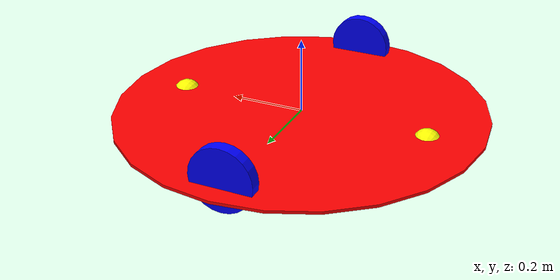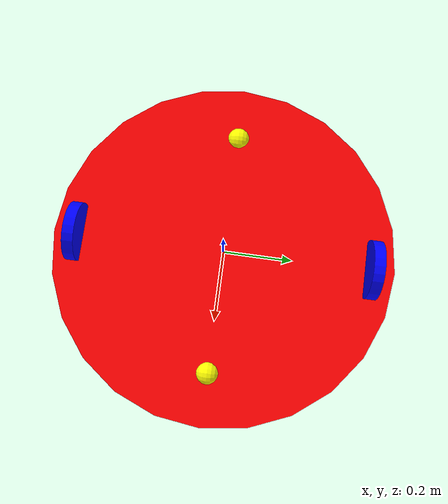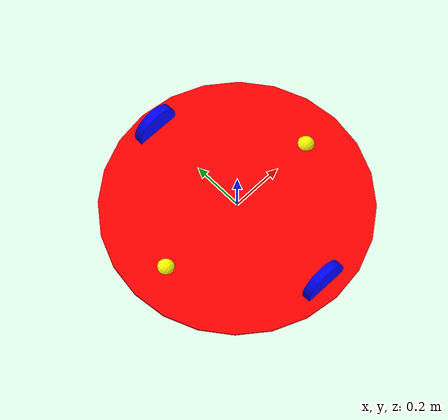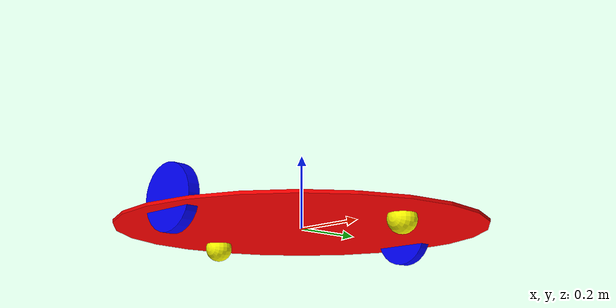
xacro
<?xml version="1.0" encoding="utf-8"?>

<robot name="myrobot" xmlns:xacro="http://www.ros.org/wiki/xacro">

<xacro:include filename="$(find myrobot)/urdf/diffrobot.gazebo"/>

<link name="base_footprint">
</link>

<joint name="base_footprint_joint" type="fixed">
      <origin
        xyz="0.0 0.0 0.0"
        rpy="0 0 0" />
    <parent link ="base_footprint"/>
    <child link ="base_link"/>
</joint>

<link name="base_link">
    <inertial>
        <origin xyz="0.0 0.0 0.0" rpy="0.0 0.0 0.0"/>
        <mass value="8.0"/>
        <inertia ixx="0.0" ixy="0.0" ixz="0.0" iyy="0.0" iyz="0.0" izz="0.0"/>
    </inertial>
    <visual name="base_link_visual">
        <geometry>
           <cylinder radius="0.5" length="0.008"/>
        </geometry>
        <material name="">
            <color rgba="1.0 0.0 0.0 1.0"/>
            <texture filename=""/>
        </material>
    </visual>
    <collision>
        <origin xyz="0.0 0.0 0.0" rpy="0.0 0.0 0.0"/>
        <geometry>
           <cylinder radius="0.5" length="0.008"/>
        </geometry>
    </collision>
</link>

<link name="left_wheel">
    <inertial>
        <origin xyz="0.0 0.0 0.0" rpy="0.0 0.0 0.0"/>
        <mass value="1.0"/>
        <inertia ixx="1.0" ixy="0.0" ixz="0.0" iyy="1.0" iyz="0.0" izz="1.0"/>
    </inertial>
    <visual name="left_wheel_visual">
        <origin xyz="0.0 0.0 0.0" rpy="0.0 0.0 0.0"/>
        <geometry>
            <cylinder radius="0.085" length="0.032"/>
        </geometry>
        <material name="">
            <color rgba="0.0 0.0 1.0 1.0"/>
            <texture filename=""/>
        </material>
    </visual>
    <collision>
        <origin xyz="0.0 0.0 0.0" rpy="0.0 0.0 0.0"/>
        <geometry>
            <cylinder radius="0.085" length="0.032"/>
        </geometry>
    </collision>
</link>

<joint name="left_wheel_joint" type="continuous">
    <origin xyz="0.0 0.43 0.025" rpy="0.0 1.5707 1.5707"/>
    <parent link="base_link"/>
    <child link="left_wheel"/>
    <axis xyz="0.0 0.0 1.0"/>
    <limit lower="0.0" upper="0.0" effort="0.0" velocity="0.0"/>
</joint>

<link name="right_wheel">
    <inertial>
        <origin xyz="0.0 0.0 0.0" rpy="0.0 0.0 0.0"/>
        <mass value="1.0"/>
        <inertia ixx="1.0" ixy="0.0" ixz="0.0" iyy="1.0" iyz="0.0" izz="1.0"/>
    </inertial>
    <visual name="right_wheel_visual">
        <origin xyz="0.0 0.0 0.0" rpy="0.0 0.0 0.0"/>
        <geometry>
            <cylinder radius="0.085" length="0.032"/>
        </geometry>
        <material name="">
            <color rgba="0.0 0.0 1.0 1.0"/>
            <texture filename=""/>
        </material>
    </visual>
    <collision>
        <origin xyz="0.0 0.0 0.0" rpy="0.0 0.0 0.0"/>
        <geometry>
            <cylinder radius="0.085" length="0.032"/>
        </geometry>
    </collision>
</link>

<joint name="right_wheel_joint" type="continuous">
    <origin xyz="0.0 -0.43 0.025" rpy="0.0 1.5707 1.5707"/>
    <parent link="base_link"/>
    <child link="right_wheel"/>
    <axis xyz="0.0 0.0 1.0"/>
    <limit lower="0.0" upper="0.0" effort="0.0" velocity="0.0"/>
</joint>

<link name="front_caster">
    <inertial>
        <origin xyz="0.0 0.0 0.0" rpy="0.0 0.0 0.0"/>
        <mass value="0.0"/>
        <inertia ixx="0.0" ixy="0.0" ixz="0.0" iyy="0.0" iyz="0.0" izz="0.0"/>
    </inertial>
    <visual name="front_caster_visual">
        <origin xyz="0.0 0.0 0.0" rpy="0.0 0.0 0.0"/>
        <geometry>
             <sphere radius="0.038"/>
        </geometry>
        <material name="">
            <color rgba="1.0 1.0 0.0 1.0"/>
        </material>
    </visual>
    <collision>
        <origin xyz="0.0 0.0 0.0" rpy="0.0 0.0 0.0"/>
        <geometry>
            <sphere radius="0.038"/>
        </geometry>
    </collision>
</link>

<joint name="front_caster_joint" type="fixed">
    <origin xyz="0.35 0.0 -0.0175" rpy="0.0 1.5707 1.5707"/>
    <parent link="base_link"/>
    <child link="front_caster"/>
    <axis xyz="0.0 0.0 0.0"/>
    <limit lower="0.0" upper="0.0" effort="0.0" velocity="0.0"/>
</joint>

<link name="back_caster">
    <inertial>
        <origin xyz="0.0 0.0 0.0" rpy="0.0 0.0 0.0"/>
        <mass value="0.0"/>
        <inertia ixx="0.0" ixy="0.0" ixz="0.0" iyy="0.0" iyz="0.0" izz="0.0"/>
    </inertial>
    <visual name="back_caster_visual">
        <origin xyz="0.0 0.0 0.0" rpy="0.0 0.0 0.0"/>
        <geometry>
            <sphere radius="0.038"/>
        </geometry>
        <material name="">
            <color rgba="1.0 1.0 0.0 1.0"/>
        </material>
    </visual>
    <collision>
        <origin xyz="0.0 0.0 0.0" rpy="0.0 0.0 0.0"/>
        <geometry>
            <sphere radius="0.038"/>
        </geometry>
    </collision>
</link>

<joint name="back_caster_joint" type="fixed">
    <origin xyz="-0.35 0.0 -0.0175" rpy="0.0 1.5707 1.5707"/>
    <parent link="base_link"/>
    <child link="back_caster"/>
    <axis xyz="0.0 0.0 0.0"/>
    <limit lower="0.0" upper="0.0" effort="0.0" velocity="0.0"/>
</joint>

</robot>
